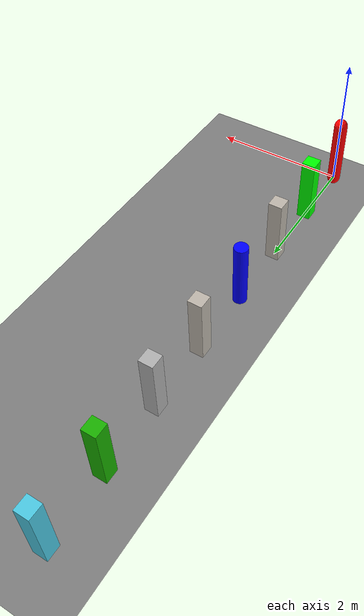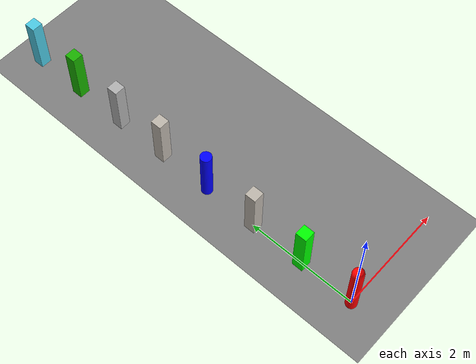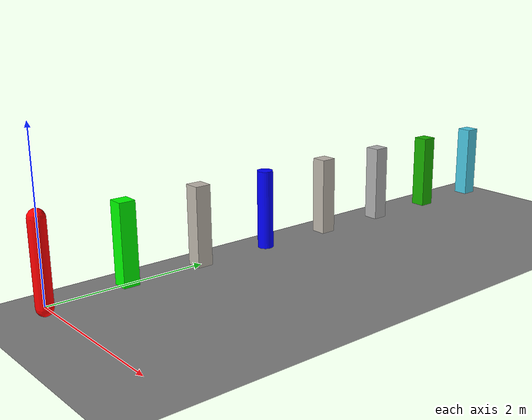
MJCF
<mujoco model="materials">
    <compiler meshdir="assets" texturedir="assets"/>

    <asset>
        <texture name="grid_texture" type="2d" file="grid.png"/>
        <material name="RedEmissive" rgba="1 0 0 1" emission="0.5"/>
        <material name="GreenSpecular" rgba="0 1 0 1" specular="0.8"/>
        <material name="BlueMetallic" rgba="0 0 1 1" metallic="0.8" shininess="0.3" specular="0"/>
        <material name="Grid" texture="grid_texture" specular="0"/>
        <mesh name="box" file="box.obj" scale="0.2 0.2 1"/>
        <!-- Unnamed texture for test -->
        <texture type="2d" file="grid.png"/>
        <material name="UnnamedTexture" texture="grid" specular="0"/>
        <material name="Gray" rgba="0.7 0.7 0.7 1" emission="0.0"/>
        <material name="DarkGreen" rgba="0.1 0.7 0.0 1" emission="0.1"/>
        <material name="SkyBlue" rgba="0.3 0.8 0.9 1" emission="0.2"/>
    </asset>

    <worldbody>
        <geom type="plane" size="0 0 .1" pos="0 0 -.1"/>
        <geom type="capsule" material="RedEmissive" size="0.1" fromto="0 0 0 0 0 1"/>
        <geom type="box" material="GreenSpecular" size="0.1" fromto="0 1 0 0 1 1"/>
        <geom name="TexturedBox" type="mesh" mesh="box" material="Grid" pos="0 2 0.5"/>
        <geom type="cylinder" material="BlueMetallic" size="0.1" fromto="0 3 0 0 3 1"/>
        <geom type="box" material="UnnamedTexture" size="0.1 0.1 0.5" pos="0 4 0.5"/>
        <geom type="box" material="Gray" size="0.1 0.1 0.5" pos="0 5 0.5"/>
        <geom type="box" material="DarkGreen" size="0.1 0.1 0.5" pos="0 6 0.5"/>
        <geom type="box" material="SkyBlue" size="0.1 0.1 0.5" pos="0 7 0.5"/>
    </worldbody>
</mujoco>
